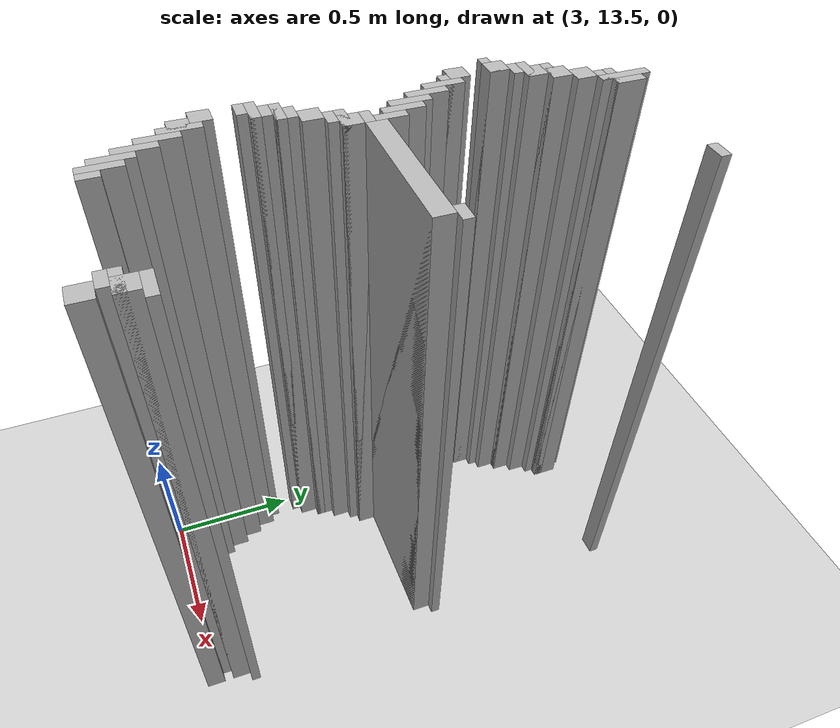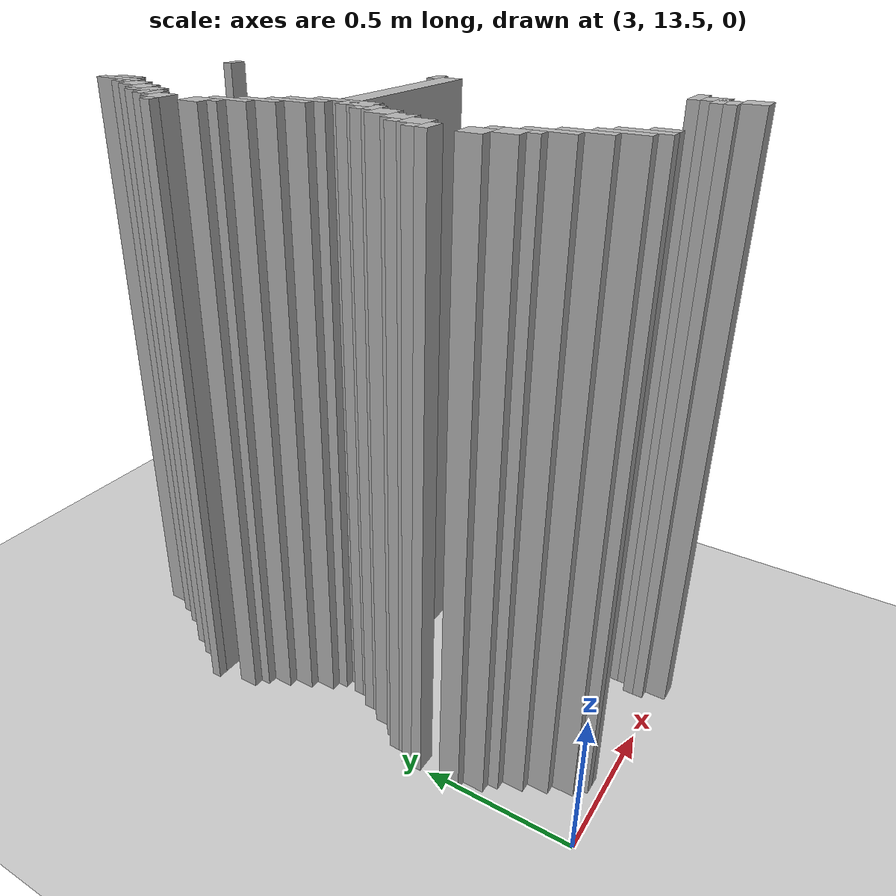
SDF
<sdf version="1.6">
 <world name="slam_world">
  <model name="ground_plane">
   <static>true</static>
   <link name="link">
    <collision name="collision">
     <geometry><plane><normal>0 0 1</normal><size>100 100</size></plane></geometry>
    </collision>
    <visual name="visual">
     <geometry><plane><normal>0 0 1</normal><size>100 100</size></plane></geometry>
     <material>
      <ambient>0.8 0.8 0.8 1</ambient>
      <diffuse>0.8 0.8 0.8 1</diffuse>
      <specular>0.8 0.8 0.8 1</specular>
     </material>
    </visual>
   </link>
  </model>
  <model name="wall_695">
   <static>true</static>
   <pose>3.219257540603248 15.261020881670532 1.0 0 0 0</pose>
   <link name="link">
    <collision name="collision">
     <geometry><box><size>0.03480278422273782 0.17401392111368907 2.0</size></box></geometry>
    </collision>
    <visual name="visual">
     <geometry><box><size>0.03480278422273782 0.17401392111368907 2.0</size></box></geometry>
     <material><ambient>0.5 0.5 0.5 1</ambient><diffuse>0.7 0.7 0.7 1</diffuse></material>
    </visual>
   </link>
  </model>
  <model name="wall_711">
   <static>true</static>
   <pose>3.254060324825986 15.261020881670532 1.0 0 0 0</pose>
   <link name="link">
    <collision name="collision">
     <geometry><box><size>0.03480278422273782 0.10440835266821345 2.0</size></box></geometry>
    </collision>
    <visual name="visual">
     <geometry><box><size>0.03480278422273782 0.10440835266821345 2.0</size></box></geometry>
     <material><ambient>0.5 0.5 0.5 1</ambient><diffuse>0.7 0.7 0.7 1</diffuse></material>
    </visual>
   </link>
  </model>
  <model name="wall_725">
   <static>true</static>
   <pose>3.7238979118329465 15.261020881670532 1.0 0 0 0</pose>
   <link name="link">
    <collision name="collision">
     <geometry><box><size>0.06960556844547564 0.03480278422273782 2.0</size></box></geometry>
    </collision>
    <visual name="visual">
     <geometry><box><size>0.06960556844547564 0.03480278422273782 2.0</size></box></geometry>
     <material><ambient>0.5 0.5 0.5 1</ambient><diffuse>0.7 0.7 0.7 1</diffuse></material>
    </visual>
   </link>
  </model>
  <model name="wall_735">
   <static>true</static>
   <pose>3.219257540603248 15.226218097447795 1.0 0 0 0</pose>
   <link name="link">
    <collision name="collision">
     <geometry><box><size>0.10440835266821345 0.03480278422273782 2.0</size></box></geometry>
    </collision>
    <visual name="visual">
     <geometry><box><size>0.10440835266821345 0.03480278422273782 2.0</size></box></geometry>
     <material><ambient>0.5 0.5 0.5 1</ambient><diffuse>0.7 0.7 0.7 1</diffuse></material>
    </visual>
   </link>
  </model>
  <model name="wall_747">
   <static>true</static>
   <pose>3.201856148491879 15.191415313225058 1.0 0 0 0</pose>
   <link name="link">
    <collision name="collision">
     <geometry><box><size>0.06960556844547564 0.03480278422273782 2.0</size></box></geometry>
    </collision>
    <visual name="visual">
     <geometry><box><size>0.06960556844547564 0.03480278422273782 2.0</size></box></geometry>
     <material><ambient>0.5 0.5 0.5 1</ambient><diffuse>0.7 0.7 0.7 1</diffuse></material>
    </visual>
   </link>
  </model>
  <model name="wall_761">
   <static>true</static>
   <pose>3.167053364269141 15.139211136890951 1.0 0 0 0</pose>
   <link name="link">
    <collision name="collision">
     <geometry><box><size>0.06960556844547564 0.06960556844547564 2.0</size></box></geometry>
    </collision>
    <visual name="visual">
     <geometry><box><size>0.06960556844547564 0.06960556844547564 2.0</size></box></geometry>
     <material><ambient>0.5 0.5 0.5 1</ambient><diffuse>0.7 0.7 0.7 1</diffuse></material>
    </visual>
   </link>
  </model>
  <model name="wall_775">
   <static>true</static>
   <pose>3.1322505800464038 15.069605568445475 1.0 0 0 0</pose>
   <link name="link">
    <collision name="collision">
     <geometry><box><size>0.06960556844547564 0.06960556844547564 2.0</size></box></geometry>
    </collision>
    <visual name="visual">
     <geometry><box><size>0.06960556844547564 0.06960556844547564 2.0</size></box></geometry>
     <material><ambient>0.5 0.5 0.5 1</ambient><diffuse>0.7 0.7 0.7 1</diffuse></material>
    </visual>
   </link>
  </model>
  <model name="wall_789">
   <static>true</static>
   <pose>3.1148491879350346 15.052204176334106 1.0 0 0 0</pose>
   <link name="link">
    <collision name="collision">
     <geometry><box><size>0.10440835266821345 0.03480278422273782 2.0</size></box></geometry>
    </collision>
    <visual name="visual">
     <geometry><box><size>0.10440835266821345 0.03480278422273782 2.0</size></box></geometry>
     <material><ambient>0.5 0.5 0.5 1</ambient><diffuse>0.7 0.7 0.7 1</diffuse></material>
    </visual>
   </link>
  </model>
  <model name="wall_803">
   <static>true</static>
   <pose>3.097447795823666 15.0 1.0 0 0 0</pose>
   <link name="link">
    <collision name="collision">
     <geometry><box><size>0.06960556844547564 0.06960556844547564 2.0</size></box></geometry>
    </collision>
    <visual name="visual">
     <geometry><box><size>0.06960556844547564 0.06960556844547564 2.0</size></box></geometry>
     <material><ambient>0.5 0.5 0.5 1</ambient><diffuse>0.7 0.7 0.7 1</diffuse></material>
    </visual>
   </link>
  </model>
  <model name="wall_815">
   <static>true</static>
   <pose>3.0800464037122968 14.982598607888631 1.0 0 0 0</pose>
   <link name="link">
    <collision name="collision">
     <geometry><box><size>0.10440835266821345 0.03480278422273782 2.0</size></box></geometry>
    </collision>
    <visual name="visual">
     <geometry><box><size>0.10440835266821345 0.03480278422273782 2.0</size></box></geometry>
     <material><ambient>0.5 0.5 0.5 1</ambient><diffuse>0.7 0.7 0.7 1</diffuse></material>
    </visual>
   </link>
  </model>
  <model name="wall_828">
   <static>true</static>
   <pose>3.062645011600928 14.947795823665892 1.0 0 0 0</pose>
   <link name="link">
    <collision name="collision">
     <geometry><box><size>0.06960556844547564 0.03480278422273782 2.0</size></box></geometry>
    </collision>
    <visual name="visual">
     <geometry><box><size>0.06960556844547564 0.03480278422273782 2.0</size></box></geometry>
     <material><ambient>0.5 0.5 0.5 1</ambient><diffuse>0.7 0.7 0.7 1</diffuse></material>
    </visual>
   </link>
  </model>
  <model name="wall_837">
   <static>true</static>
   <pose>3.02784222737819 14.895591647331786 1.0 0 0 0</pose>
   <link name="link">
    <collision name="collision">
     <geometry><box><size>0.06960556844547564 0.06960556844547564 2.0</size></box></geometry>
    </collision>
    <visual name="visual">
     <geometry><box><size>0.06960556844547564 0.06960556844547564 2.0</size></box></geometry>
     <material><ambient>0.5 0.5 0.5 1</ambient><diffuse>0.7 0.7 0.7 1</diffuse></material>
    </visual>
   </link>
  </model>
  <model name="wall_850">
   <static>true</static>
   <pose>3.010440835266821 14.878190255220417 1.0 0 0 0</pose>
   <link name="link">
    <collision name="collision">
     <geometry><box><size>0.10440835266821345 0.03480278422273782 2.0</size></box></geometry>
    </collision>
    <visual name="visual">
     <geometry><box><size>0.10440835266821345 0.03480278422273782 2.0</size></box></geometry>
     <material><ambient>0.5 0.5 0.5 1</ambient><diffuse>0.7 0.7 0.7 1</diffuse></material>
    </visual>
   </link>
  </model>
  <model name="wall_885">
   <static>true</static>
   <pose>3.02784222737819 14.756380510440835 1.0 0 0 0</pose>
   <link name="link">
    <collision name="collision">
     <geometry><box><size>0.06960556844547564 0.06960556844547564 2.0</size></box></geometry>
    </collision>
    <visual name="visual">
     <geometry><box><size>0.06960556844547564 0.06960556844547564 2.0</size></box></geometry>
     <material><ambient>0.5 0.5 0.5 1</ambient><diffuse>0.7 0.7 0.7 1</diffuse></material>
    </visual>
   </link>
  </model>
  <model name="wall_901">
   <static>true</static>
   <pose>3.0800464037122968 14.68677494199536 1.0 0 0 0</pose>
   <link name="link">
    <collision name="collision">
     <geometry><box><size>0.03480278422273782 0.13921113689095127 2.0</size></box></geometry>
    </collision>
    <visual name="visual">
     <geometry><box><size>0.03480278422273782 0.13921113689095127 2.0</size></box></geometry>
     <material><ambient>0.5 0.5 0.5 1</ambient><diffuse>0.7 0.7 0.7 1</diffuse></material>
    </visual>
   </link>
  </model>
  <model name="wall_915">
   <static>true</static>
   <pose>3.062645011600928 14.704176334106728 1.0 0 0 0</pose>
   <link name="link">
    <collision name="collision">
     <geometry><box><size>0.06960556844547564 0.03480278422273782 2.0</size></box></geometry>
    </collision>
    <visual name="visual">
     <geometry><box><size>0.06960556844547564 0.03480278422273782 2.0</size></box></geometry>
     <material><ambient>0.5 0.5 0.5 1</ambient><diffuse>0.7 0.7 0.7 1</diffuse></material>
    </visual>
   </link>
  </model>
  <model name="wall_928">
   <static>true</static>
   <pose>3.1148491879350346 14.617169373549883 1.0 0 0 0</pose>
   <link name="link">
    <collision name="collision">
     <geometry><box><size>0.03480278422273782 0.13921113689095127 2.0</size></box></geometry>
    </collision>
    <visual name="visual">
     <geometry><box><size>0.03480278422273782 0.13921113689095127 2.0</size></box></geometry>
     <material><ambient>0.5 0.5 0.5 1</ambient><diffuse>0.7 0.7 0.7 1</diffuse></material>
    </visual>
   </link>
  </model>
  <model name="wall_944">
   <static>true</static>
   <pose>3.1496519721577725 14.547563805104408 1.0 0 0 0</pose>
   <link name="link">
    <collision name="collision">
     <geometry><box><size>0.03480278422273782 0.13921113689095127 2.0</size></box></geometry>
    </collision>
    <visual name="visual">
     <geometry><box><size>0.03480278422273782 0.13921113689095127 2.0</size></box></geometry>
     <material><ambient>0.5 0.5 0.5 1</ambient><diffuse>0.7 0.7 0.7 1</diffuse></material>
    </visual>
   </link>
  </model>
  <model name="wall_960">
   <static>true</static>
   <pose>3.1844547563805103 14.512761020881669 1.0 0 0 0</pose>
   <link name="link">
    <collision name="collision">
     <geometry><box><size>0.03480278422273782 0.13921113689095127 2.0</size></box></geometry>
    </collision>
    <visual name="visual">
     <geometry><box><size>0.03480278422273782 0.13921113689095127 2.0</size></box></geometry>
     <material><ambient>0.5 0.5 0.5 1</ambient><diffuse>0.7 0.7 0.7 1</diffuse></material>
    </visual>
   </link>
  </model>
  <model name="wall_983">
   <static>true</static>
   <pose>3.219257540603248 14.408352668213457 1.0 0 0 0</pose>
   <link name="link">
    <collision name="collision">
     <geometry><box><size>0.03480278422273782 0.2088167053364269 2.0</size></box></geometry>
    </collision>
    <visual name="visual">
     <geometry><box><size>0.03480278422273782 0.2088167053364269 2.0</size></box></geometry>
     <material><ambient>0.5 0.5 0.5 1</ambient><diffuse>0.7 0.7 0.7 1</diffuse></material>
    </visual>
   </link>
  </model>
  <model name="wall_997">
   <static>true</static>
   <pose>3.7587006960556844 14.460556844547563 1.0 0 0 0</pose>
   <link name="link">
    <collision name="collision">
     <geometry><box><size>0.06960556844547564 0.03480278422273782 2.0</size></box></geometry>
    </collision>
    <visual name="visual">
     <geometry><box><size>0.06960556844547564 0.03480278422273782 2.0</size></box></geometry>
     <material><ambient>0.5 0.5 0.5 1</ambient><diffuse>0.7 0.7 0.7 1</diffuse></material>
    </visual>
   </link>
  </model>
  <model name="wall_1006">
   <static>true</static>
   <pose>3.4976798143851506 14.408352668213457 1.0 0 0 0</pose>
   <link name="link">
    <collision name="collision">
     <geometry><box><size>0.5220417633410672 0.06960556844547564 2.0</size></box></geometry>
    </collision>
    <visual name="visual">
     <geometry><box><size>0.5220417633410672 0.06960556844547564 2.0</size></box></geometry>
     <material><ambient>0.5 0.5 0.5 1</ambient><diffuse>0.7 0.7 0.7 1</diffuse></material>
    </visual>
   </link>
  </model>
  <model name="wall_1021">
   <static>true</static>
   <pose>3.4628770301624128 14.390951276102088 1.0 0 0 0</pose>
   <link name="link">
    <collision name="collision">
     <geometry><box><size>0.5916473317865429 0.03480278422273782 2.0</size></box></geometry>
    </collision>
    <visual name="visual">
     <geometry><box><size>0.5916473317865429 0.03480278422273782 2.0</size></box></geometry>
     <material><ambient>0.5 0.5 0.5 1</ambient><diffuse>0.7 0.7 0.7 1</diffuse></material>
    </visual>
   </link>
  </model>
  <model name="wall_1033">
   <static>true</static>
   <pose>3.201856148491879 14.33874709976798 1.0 0 0 0</pose>
   <link name="link">
    <collision name="collision">
     <geometry><box><size>0.06960556844547564 0.06960556844547564 2.0</size></box></geometry>
    </collision>
    <visual name="visual">
     <geometry><box><size>0.06960556844547564 0.06960556844547564 2.0</size></box></geometry>
     <material><ambient>0.5 0.5 0.5 1</ambient><diffuse>0.7 0.7 0.7 1</diffuse></material>
    </visual>
   </link>
  </model>
  <model name="wall_1045">
   <static>true</static>
   <pose>3.1844547563805103 14.321345707656612 1.0 0 0 0</pose>
   <link name="link">
    <collision name="collision">
     <geometry><box><size>0.10440835266821345 0.03480278422273782 2.0</size></box></geometry>
    </collision>
    <visual name="visual">
     <geometry><box><size>0.10440835266821345 0.03480278422273782 2.0</size></box></geometry>
     <material><ambient>0.5 0.5 0.5 1</ambient><diffuse>0.7 0.7 0.7 1</diffuse></material>
    </visual>
   </link>
  </model>
  <model name="wall_1056">
   <static>true</static>
   <pose>3.167053364269141 14.286542923433874 1.0 0 0 0</pose>
   <link name="link">
    <collision name="collision">
     <geometry><box><size>0.06960556844547564 0.03480278422273782 2.0</size></box></geometry>
    </collision>
    <visual name="visual">
     <geometry><box><size>0.06960556844547564 0.03480278422273782 2.0</size></box></geometry>
     <material><ambient>0.5 0.5 0.5 1</ambient><diffuse>0.7 0.7 0.7 1</diffuse></material>
    </visual>
   </link>
  </model>
  <model name="wall_1064">
   <static>true</static>
   <pose>3.1322505800464038 14.234338747099768 1.0 0 0 0</pose>
   <link name="link">
    <collision name="collision">
     <geometry><box><size>0.06960556844547564 0.06960556844547564 2.0</size></box></geometry>
    </collision>
    <visual name="visual">
     <geometry><box><size>0.06960556844547564 0.06960556844547564 2.0</size></box></geometry>
     <material><ambient>0.5 0.5 0.5 1</ambient><diffuse>0.7 0.7 0.7 1</diffuse></material>
    </visual>
   </link>
  </model>
  <model name="wall_1076">
   <static>true</static>
   <pose>3.097447795823666 14.164733178654291 1.0 0 0 0</pose>
   <link name="link">
    <collision name="collision">
     <geometry><box><size>0.06960556844547564 0.06960556844547564 2.0</size></box></geometry>
    </collision>
    <visual name="visual">
     <geometry><box><size>0.06960556844547564 0.06960556844547564 2.0</size></box></geometry>
     <material><ambient>0.5 0.5 0.5 1</ambient><diffuse>0.7 0.7 0.7 1</diffuse></material>
    </visual>
   </link>
  </model>
  <model name="wall_1088">
   <static>true</static>
   <pose>3.0800464037122968 14.147331786542923 1.0 0 0 0</pose>
   <link name="link">
    <collision name="collision">
     <geometry><box><size>0.10440835266821345 0.03480278422273782 2.0</size></box></geometry>
    </collision>
    <visual name="visual">
     <geometry><box><size>0.10440835266821345 0.03480278422273782 2.0</size></box></geometry>
     <material><ambient>0.5 0.5 0.5 1</ambient><diffuse>0.7 0.7 0.7 1</diffuse></material>
    </visual>
   </link>
  </model>
  <model name="wall_1099">
   <static>true</static>
   <pose>3.062645011600928 14.095127610208817 1.0 0 0 0</pose>
   <link name="link">
    <collision name="collision">
     <geometry><box><size>0.06960556844547564 0.06960556844547564 2.0</size></box></geometry>
    </collision>
    <visual name="visual">
     <geometry><box><size>0.06960556844547564 0.06960556844547564 2.0</size></box></geometry>
     <material><ambient>0.5 0.5 0.5 1</ambient><diffuse>0.7 0.7 0.7 1</diffuse></material>
    </visual>
   </link>
  </model>
  <model name="wall_1107">
   <static>true</static>
   <pose>3.045243619489559 14.077726218097448 1.0 0 0 0</pose>
   <link name="link">
    <collision name="collision">
     <geometry><box><size>0.10440835266821345 0.03480278422273782 2.0</size></box></geometry>
    </collision>
    <visual name="visual">
     <geometry><box><size>0.10440835266821345 0.03480278422273782 2.0</size></box></geometry>
     <material><ambient>0.5 0.5 0.5 1</ambient><diffuse>0.7 0.7 0.7 1</diffuse></material>
    </visual>
   </link>
  </model>
  <model name="wall_1118">
   <static>true</static>
   <pose>3.02784222737819 14.042923433874709 1.0 0 0 0</pose>
   <link name="link">
    <collision name="collision">
     <geometry><box><size>0.06960556844547564 0.03480278422273782 2.0</size></box></geometry>
    </collision>
    <visual name="visual">
     <geometry><box><size>0.06960556844547564 0.03480278422273782 2.0</size></box></geometry>
     <material><ambient>0.5 0.5 0.5 1</ambient><diffuse>0.7 0.7 0.7 1</diffuse></material>
    </visual>
   </link>
  </model>
  <model name="wall_1141">
   <static>true</static>
   <pose>3.02784222737819 13.921113689095128 1.0 0 0 0</pose>
   <link name="link">
    <collision name="collision">
     <geometry><box><size>0.06960556844547564 0.06960556844547564 2.0</size></box></geometry>
    </collision>
    <visual name="visual">
     <geometry><box><size>0.06960556844547564 0.06960556844547564 2.0</size></box></geometry>
     <material><ambient>0.5 0.5 0.5 1</ambient><diffuse>0.7 0.7 0.7 1</diffuse></material>
    </visual>
   </link>
  </model>
  <model name="wall_1158">
   <static>true</static>
   <pose>3.0800464037122968 13.851508120649651 1.0 0 0 0</pose>
   <link name="link">
    <collision name="collision">
     <geometry><box><size>0.03480278422273782 0.13921113689095127 2.0</size></box></geometry>
    </collision>
    <visual name="visual">
     <geometry><box><size>0.03480278422273782 0.13921113689095127 2.0</size></box></geometry>
     <material><ambient>0.5 0.5 0.5 1</ambient><diffuse>0.7 0.7 0.7 1</diffuse></material>
    </visual>
   </link>
  </model>
  <model name="wall_1175">
   <static>true</static>
   <pose>3.062645011600928 13.851508120649651 1.0 0 0 0</pose>
   <link name="link">
    <collision name="collision">
     <geometry><box><size>0.06960556844547564 0.06960556844547564 2.0</size></box></geometry>
    </collision>
    <visual name="visual">
     <geometry><box><size>0.06960556844547564 0.06960556844547564 2.0</size></box></geometry>
     <material><ambient>0.5 0.5 0.5 1</ambient><diffuse>0.7 0.7 0.7 1</diffuse></material>
    </visual>
   </link>
  </model>
  <model name="wall_1192">
   <static>true</static>
   <pose>3.1148491879350346 13.781902552204176 1.0 0 0 0</pose>
   <link name="link">
    <collision name="collision">
     <geometry><box><size>0.03480278422273782 0.13921113689095127 2.0</size></box></geometry>
    </collision>
    <visual name="visual">
     <geometry><box><size>0.03480278422273782 0.13921113689095127 2.0</size></box></geometry>
     <material><ambient>0.5 0.5 0.5 1</ambient><diffuse>0.7 0.7 0.7 1</diffuse></material>
    </visual>
   </link>
  </model>
  <model name="wall_1215">
   <static>true</static>
   <pose>3.1496519721577725 13.7122969837587 1.0 0 0 0</pose>
   <link name="link">
    <collision name="collision">
     <geometry><box><size>0.03480278422273782 0.13921113689095127 2.0</size></box></geometry>
    </collision>
    <visual name="visual">
     <geometry><box><size>0.03480278422273782 0.13921113689095127 2.0</size></box></geometry>
     <material><ambient>0.5 0.5 0.5 1</ambient><diffuse>0.7 0.7 0.7 1</diffuse></material>
    </visual>
   </link>
  </model>
  <model name="wall_1232">
   <static>true</static>
   <pose>3.1844547563805103 13.642691415313225 1.0 0 0 0</pose>
   <link name="link">
    <collision name="collision">
     <geometry><box><size>0.03480278422273782 0.13921113689095127 2.0</size></box></geometry>
    </collision>
    <visual name="visual">
     <geometry><box><size>0.03480278422273782 0.13921113689095127 2.0</size></box></geometry>
     <material><ambient>0.5 0.5 0.5 1</ambient><diffuse>0.7 0.7 0.7 1</diffuse></material>
    </visual>
   </link>
  </model>
  <model name="wall_1249">
   <static>true</static>
   <pose>3.219257540603248 13.607888631090487 1.0 0 0 0</pose>
   <link name="link">
    <collision name="collision">
     <geometry><box><size>0.03480278422273782 0.13921113689095127 2.0</size></box></geometry>
    </collision>
    <visual name="visual">
     <geometry><box><size>0.03480278422273782 0.13921113689095127 2.0</size></box></geometry>
     <material><ambient>0.5 0.5 0.5 1</ambient><diffuse>0.7 0.7 0.7 1</diffuse></material>
    </visual>
   </link>
  </model>
  <model name="wall_1250">
   <static>true</static>
   <pose>3.776102088167053 13.660092807424594 1.0 0 0 0</pose>
   <link name="link">
    <collision name="collision">
     <geometry><box><size>0.10440835266821345 0.03480278422273782 2.0</size></box></geometry>
    </collision>
    <visual name="visual">
     <geometry><box><size>0.10440835266821345 0.03480278422273782 2.0</size></box></geometry>
     <material><ambient>0.5 0.5 0.5 1</ambient><diffuse>0.7 0.7 0.7 1</diffuse></material>
    </visual>
   </link>
  </model>
  <model name="wall_1264">
   <static>true</static>
   <pose>3.7587006960556844 13.607888631090487 1.0 0 0 0</pose>
   <link name="link">
    <collision name="collision">
     <geometry><box><size>0.06960556844547564 0.06960556844547564 2.0</size></box></geometry>
    </collision>
    <visual name="visual">
     <geometry><box><size>0.06960556844547564 0.06960556844547564 2.0</size></box></geometry>
     <material><ambient>0.5 0.5 0.5 1</ambient><diffuse>0.7 0.7 0.7 1</diffuse></material>
    </visual>
   </link>
  </model>
  <model name="wall_1271">
   <static>true</static>
   <pose>3.254060324825986 13.573085846867748 1.0 0 0 0</pose>
   <link name="link">
    <collision name="collision">
     <geometry><box><size>0.03480278422273782 0.06960556844547564 2.0</size></box></geometry>
    </collision>
    <visual name="visual">
     <geometry><box><size>0.03480278422273782 0.06960556844547564 2.0</size></box></geometry>
     <material><ambient>0.5 0.5 0.5 1</ambient><diffuse>0.7 0.7 0.7 1</diffuse></material>
    </visual>
   </link>
  </model>
  <model name="wall_1272">
   <static>true</static>
   <pose>3.741299303944315 13.590487238979117 1.0 0 0 0</pose>
   <link name="link">
    <collision name="collision">
     <geometry><box><size>0.10440835266821345 0.03480278422273782 2.0</size></box></geometry>
    </collision>
    <visual name="visual">
     <geometry><box><size>0.10440835266821345 0.03480278422273782 2.0</size></box></geometry>
     <material><ambient>0.5 0.5 0.5 1</ambient><diffuse>0.7 0.7 0.7 1</diffuse></material>
    </visual>
   </link>
  </model>
  <model name="wall_1285">
   <static>true</static>
   <pose>3.7238979118329465 13.55568445475638 1.0 0 0 0</pose>
   <link name="link">
    <collision name="collision">
     <geometry><box><size>0.06960556844547564 0.03480278422273782 2.0</size></box></geometry>
    </collision>
    <visual name="visual">
     <geometry><box><size>0.06960556844547564 0.03480278422273782 2.0</size></box></geometry>
     <material><ambient>0.5 0.5 0.5 1</ambient><diffuse>0.7 0.7 0.7 1</diffuse></material>
    </visual>
   </link>
  </model>
  <model name="wall_1294">
   <static>true</static>
   <pose>3.7587006960556844 13.503480278422273 1.0 0 0 0</pose>
   <link name="link">
    <collision name="collision">
     <geometry><box><size>0.06960556844547564 0.06960556844547564 2.0</size></box></geometry>
    </collision>
    <visual name="visual">
     <geometry><box><size>0.06960556844547564 0.06960556844547564 2.0</size></box></geometry>
     <material><ambient>0.5 0.5 0.5 1</ambient><diffuse>0.7 0.7 0.7 1</diffuse></material>
    </visual>
   </link>
  </model>
 </world>
</sdf>
